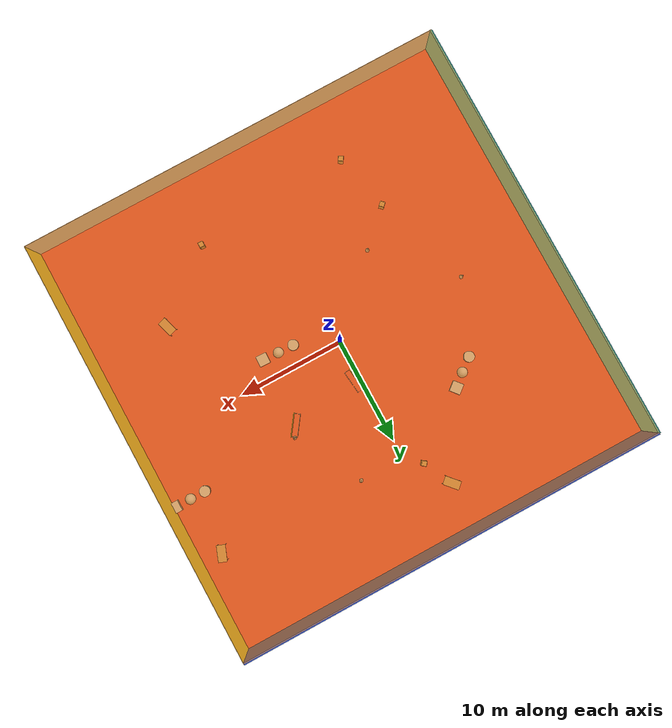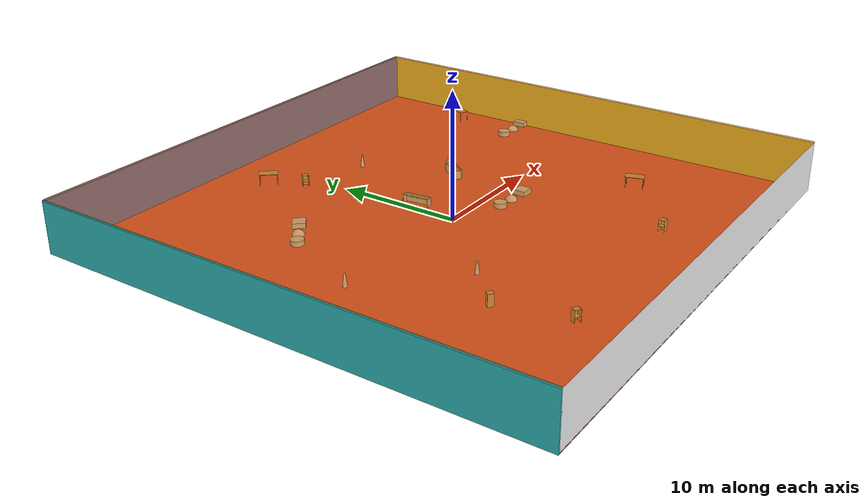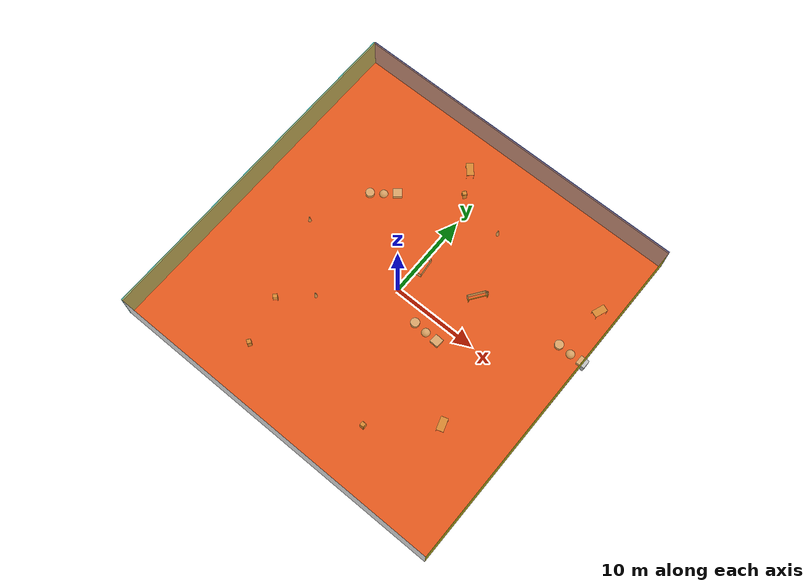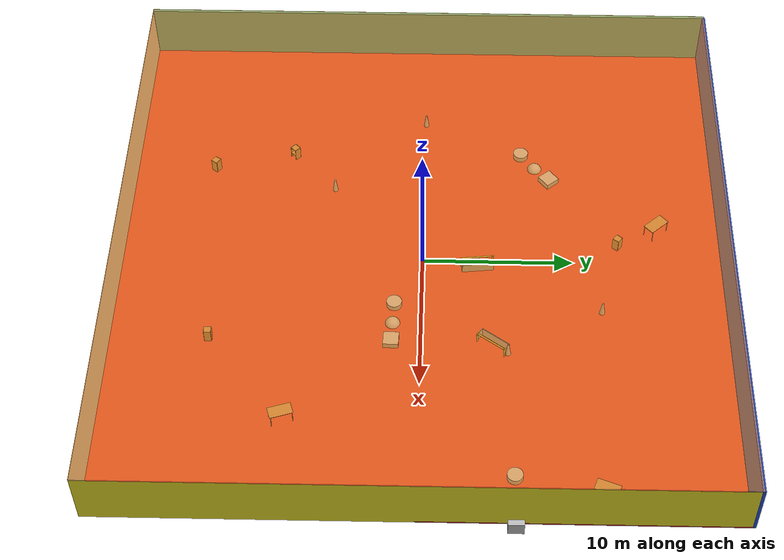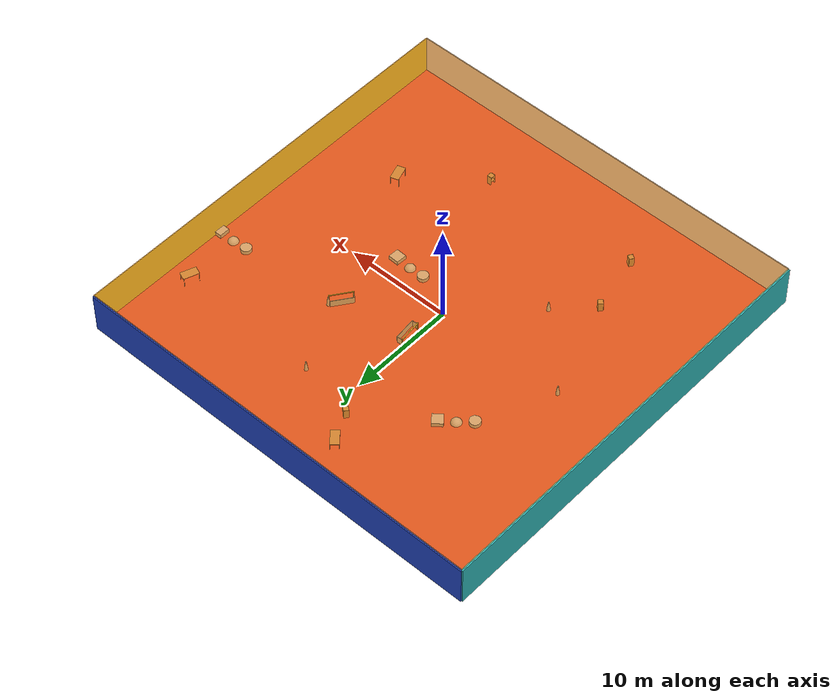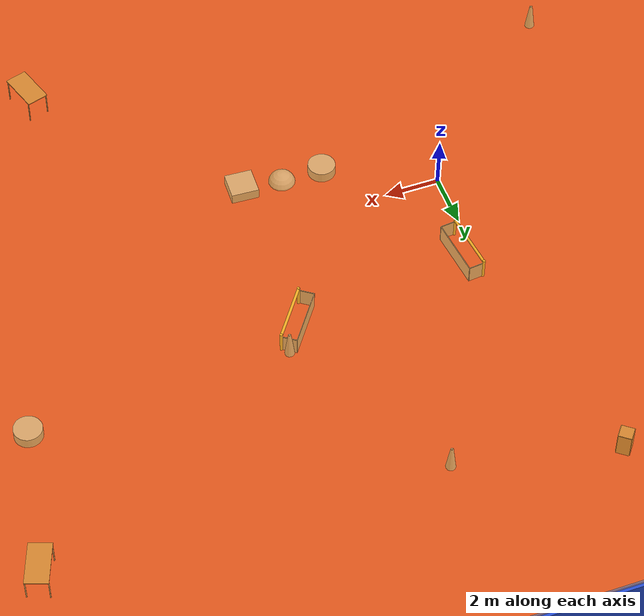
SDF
<sdf version="1.4">
 <world name="default">
  <physics type="ode">
   <max_step_size>0.001</max_step_size>
   <real_time_factor>1</real_time_factor>
   <real_time_update_rate>1000</real_time_update_rate>
   <gravity>0 0 -9.8</gravity>
  </physics>
  <scene><ambient>0.4 0.4 0.4 1</ambient><background>0.7 0.7 0.7 1</background><shadows>1</shadows></scene>
  <model name="Surrounding">
   <static>1</static>
   <link name="Ceiling">
    <collision name="Ceiling_Collision"><geometry><box><size>40 40 0.1</size></box></geometry></collision>
    <visual name="Ceiling_Visual">
     <geometry><box><size>40 40 0.1</size></box></geometry>
     <material>
      <script>
       <uri>file://media/materials/scripts/gazebo.material</uri>
       <name>Gazebo/OrangeTransparent</name>
      </script>
     </material>
    </visual>
    <pose>0 0 4.05 0 0 0</pose>
   </link>
   <link name="Wall_South">
    <collision name="Wall_South_Collision">
     <geometry><box><size>40 0 4</size></box></geometry>
     <pose>0 0 2 0 -0 0</pose>
    </collision>
    <visual name="Wall_South_Visual">
     <pose>0 0 2 0 -0 0</pose>
     <geometry><box><size>40 0 4</size></box></geometry>
     <material>
      <script><uri>file://media/materials/scripts/gazebo.material</uri><name>Gazebo/WhiteGlow</name></script>
     </material>
    </visual>
    <velocity_decay><linear>0</linear><angular>0</angular></velocity_decay>
    <pose>0 -20 0 0 -0 0</pose>
   </link>
   <link name="Wall_East">
    <collision name="Wall_21_Collision">
     <geometry><box><size>40 0 4</size></box></geometry>
     <pose>0 0 2 0 -0 0</pose>
    </collision>
    <visual name="Wall_21_Visual">
     <pose>0 0 2 0 -0 0</pose>
     <geometry><box><size>40 0 4</size></box></geometry>
     <material>
      <script><uri>file://media/materials/scripts/gazebo.material</uri><name>Gazebo/YellowGlow</name></script>
     </material>
    </visual>
    <velocity_decay><linear>0</linear><angular>0</angular></velocity_decay>
    <pose>20 0 0 0 -0 1.5708</pose>
   </link>
   <link name="Wall_North">
    <collision name="Wall_22_Collision">
     <geometry><box><size>40 0.2 4</size></box></geometry>
     <pose>0 0 2 0 -0 0</pose>
    </collision>
    <visual name="Wall_22_Visual">
     <pose>0 0 2 0 -0 0</pose>
     <geometry><box><size>40 0.2 4</size></box></geometry>
     <material>
      <script><uri>file://media/materials/scripts/gazebo.material</uri><name>Gazebo/BlueGlow</name></script>
     </material>
    </visual>
    <velocity_decay><linear>0</linear><angular>0</angular></velocity_decay>
    <pose>0 20 0 0 -0 0</pose>
   </link>
   <link name="Wall_West">
    <collision name="Wall_23_Collision">
     <geometry><box><size>40 0.2 4</size></box></geometry>
     <pose>0 0 2 0 -0 0</pose>
    </collision>
    <visual name="Wall_23_Visual">
     <pose>0 0 2 0 -0 0</pose>
     <geometry><box><size>40 0.2 4</size></box></geometry>
     <material>
      <script><uri>file://media/materials/scripts/gazebo.material</uri><name>Gazebo/TurquoiseGlow</name></script>
     </material>
    </visual>
    <velocity_decay><linear>0</linear><angular>0</angular></velocity_decay>
    <pose>-20 0 0 0 0 -1.5708</pose>
   </link>
   <link name="Ground_link">
    <collision name="collision">
     <pose>0 0 .05 0 -0 0</pose>
     <geometry><box><size>40 40 0.1</size></box></geometry>
    </collision>
    <visual name="visual">
     <pose>0 0 .05 0 -0 0</pose>
     <geometry><box><size>40 40 0.1</size></box></geometry>
     <material>
      <script><uri>file://media/materials/scripts/gazebo.material</uri><name>Gazebo/RedGlow</name></script>
     </material>
    </visual>
   </link>
   <static>1</static>
  </model>
  <spherical_coordinates>
   <surface_model>EARTH_WGS84</surface_model>
   <latitude_deg>0</latitude_deg>
   <longitude_deg>0</longitude_deg>
   <elevation>0</elevation>
   <heading_deg>0</heading_deg>
  </spherical_coordinates>
  <light name="lightball_0" type="diffuse">
   <diffuse>0.8 0.8 0.8 1</diffuse>
   <specular>0.2 0.2 0.2 1</specular>
   <attenuation>
    <range>100</range>
    <constant>0.7</constant>
    <linear>0.01</linear>
    <quadratic>0.001</quadratic>
   </attenuation>
   <direction>-0.5 0.1 -0.9</direction>
   <pose>-10.7279840948 17.1118379076 3.83331230955 0 0 0</pose>
  </light>
  <light name="lightball_1" type="diffuse">
   <diffuse>0.8 0.8 0.8 1</diffuse>
   <specular>0.2 0.2 0.2 1</specular>
   <attenuation>
    <range>100</range>
    <constant>0.7</constant>
    <linear>0.01</linear>
    <quadratic>0.001</quadratic>
   </attenuation>
   <direction>-0.5 0.1 -0.9</direction>
   <pose>3.35534705505 -5.0450178988 1.34358002676 0 0 0</pose>
  </light>
  <light name="lightball_2" type="diffuse">
   <diffuse>0.8 0.8 0.8 1</diffuse>
   <specular>0.2 0.2 0.2 1</specular>
   <attenuation>
    <range>100</range>
    <constant>0.7</constant>
    <linear>0.01</linear>
    <quadratic>0.001</quadratic>
   </attenuation>
   <direction>-0.5 0.1 -0.9</direction>
   <pose>-8.19239265757 -10.4688913247 2.97021941898 0 0 0</pose>
  </light>
  <light name="lightball_3" type="diffuse">
   <diffuse>0.8 0.8 0.8 1</diffuse>
   <specular>0.2 0.2 0.2 1</specular>
   <attenuation>
    <range>100</range>
    <constant>0.7</constant>
    <linear>0.01</linear>
    <quadratic>0.001</quadratic>
   </attenuation>
   <direction>-0.5 0.1 -0.9</direction>
   <pose>-17.3792629772 17.1680418655 0.96654072805 0 0 0</pose>
  </light>
  <light name="lightball_4" type="diffuse">
   <diffuse>0.8 0.8 0.8 1</diffuse>
   <specular>0.2 0.2 0.2 1</specular>
   <attenuation>
    <range>100</range>
    <constant>0.7</constant>
    <linear>0.01</linear>
    <quadratic>0.001</quadratic>
   </attenuation>
   <direction>-0.5 0.1 -0.9</direction>
   <pose>-0.587451969944 -10.1902761546 1.70998522963 0 0 0</pose>
  </light>
  <light name="lightball_5" type="diffuse">
   <diffuse>0.8 0.8 0.8 1</diffuse>
   <specular>0.2 0.2 0.2 1</specular>
   <attenuation>
    <range>100</range>
    <constant>0.7</constant>
    <linear>0.01</linear>
    <quadratic>0.001</quadratic>
   </attenuation>
   <direction>-0.5 0.1 -0.9</direction>
   <pose>1.13249162333 -9.19692667315 2.23045640878 0 0 0</pose>
  </light>
  <light name="lightball_6" type="diffuse">
   <diffuse>0.8 0.8 0.8 1</diffuse>
   <specular>0.2 0.2 0.2 1</specular>
   <attenuation>
    <range>100</range>
    <constant>0.7</constant>
    <linear>0.01</linear>
    <quadratic>0.001</quadratic>
   </attenuation>
   <direction>-0.5 0.1 -0.9</direction>
   <pose>7.52334128956 5.65038390771 0.666362788558 0 0 0</pose>
  </light>
  <light name="lightball_7" type="diffuse">
   <diffuse>0.8 0.8 0.8 1</diffuse>
   <specular>0.2 0.2 0.2 1</specular>
   <attenuation>
    <range>100</range>
    <constant>0.7</constant>
    <linear>0.01</linear>
    <quadratic>0.001</quadratic>
   </attenuation>
   <direction>-0.5 0.1 -0.9</direction>
   <pose>16.7004534999 11.557037036 2.14394577759 0 0 0</pose>
  </light>
  <light name="lightball_8" type="diffuse">
   <diffuse>0.8 0.8 0.8 1</diffuse>
   <specular>0.2 0.2 0.2 1</specular>
   <attenuation>
    <range>100</range>
    <constant>0.7</constant>
    <linear>0.01</linear>
    <quadratic>0.001</quadratic>
   </attenuation>
   <direction>-0.5 0.1 -0.9</direction>
   <pose>2.47321849644 -0.382609116127 3.87455380756 0 0 0</pose>
  </light>
  <light name="lightball_9" type="diffuse">
   <diffuse>0.8 0.8 0.8 1</diffuse>
   <specular>0.2 0.2 0.2 1</specular>
   <attenuation>
    <range>100</range>
    <constant>0.7</constant>
    <linear>0.01</linear>
    <quadratic>0.001</quadratic>
   </attenuation>
   <direction>-0.5 0.1 -0.9</direction>
   <pose>7.49203013958 -3.53222679526 3.64281454923 0 0 0</pose>
  </light>
  <light name="lightball_10" type="diffuse">
   <diffuse>0.8 0.8 0.8 1</diffuse>
   <specular>0.2 0.2 0.2 1</specular>
   <attenuation>
    <range>100</range>
    <constant>0.7</constant>
    <linear>0.01</linear>
    <quadratic>0.001</quadratic>
   </attenuation>
   <direction>-0.5 0.1 -0.9</direction>
   <pose>15.2537680403 -19.5426441244 0.514947528511 0 0 0</pose>
  </light>
  <light name="lightball_11" type="diffuse">
   <diffuse>0.8 0.8 0.8 1</diffuse>
   <specular>0.2 0.2 0.2 1</specular>
   <attenuation>
    <range>100</range>
    <constant>0.7</constant>
    <linear>0.01</linear>
    <quadratic>0.001</quadratic>
   </attenuation>
   <direction>-0.5 0.1 -0.9</direction>
   <pose>15.0873107634 15.8723431249 0.752538749737 0 0 0</pose>
  </light>
  <light name="lightball_12" type="diffuse">
   <diffuse>0.8 0.8 0.8 1</diffuse>
   <specular>0.2 0.2 0.2 1</specular>
   <attenuation>
    <range>100</range>
    <constant>0.7</constant>
    <linear>0.01</linear>
    <quadratic>0.001</quadratic>
   </attenuation>
   <direction>-0.5 0.1 -0.9</direction>
   <pose>-10.1058694538 -5.62010835943 3.61650600124 0 0 0</pose>
  </light>
  <include>
   <uri>model://construction_cone</uri>
   <pose>-12.4864191875 0.0509456985593 0 0 0 0.413116198196</pose>
  </include>
  <include><uri>model://cabinet</uri><pose>-8.01102892594 -14.5217792051 0 0 0 0.99715383618</pose></include>
  <include><uri>model://cabinet</uri><pose>-9.27413565466 -9.07574262727 0 0 0 2.36131253527</pose></include>
  <include>
   <uri>model://textured_shapes</uri>
   <pose>-8.38218603075 7.65514404815 0 0 0 2.25108030659</pose>
  </include>
  <include>
   <uri>model://construction_cone</uri>
   <pose>-6.19581092213 -6.12908300342 0 0 0 0.816391929198</pose>
  </include>
  <include><uri>model://cabinet</uri><pose>-1.38099672029 13.029977352 0 0 0 0.905992900879</pose></include>
  <include><uri>model://table</uri><pose>-2.71116943023 15.6939075955 0 0 0 2.29727327424</pose></include>
  <include>
   <uri>model://robocup_3Dsim_goal</uri>
   <pose>0.294906978289 3.63748076103 0 0 0 0.108794446169</pose>
  </include>
  <include>
   <uri>model://construction_cone</uri>
   <pose>4.23821419139 11.7759125557 0 0 0 1.06994911796</pose>
  </include>
  <include><uri>model://cabinet</uri><pose>6.74214248981 -13.6350421135 0 0 0 0.0116989631782</pose></include>
  <include>
   <uri>model://textured_shapes</uri>
   <pose>5.31057671063 -1.82805321474 0 0 0 1.52931746453</pose>
  </include>
  <include>
   <uri>model://robocup_3Dsim_goal</uri>
   <pose>7.23367044425 4.50920731769 0 0 0 2.51919342187</pose>
  </include>
  <include>
   <uri>model://construction_cone</uri>
   <pose>7.6329733974 5.6109755012 0 0 0 2.62678787849</pose>
  </include>
  <include><uri>model://table</uri><pose>12.8766423751 -8.52065964285 0 0 0 1.88025856582</pose></include>
  <include>
   <uri>model://textured_shapes</uri>
   <pose>18.3683043161 5.93190158132 0 0 0 1.5752947557</pose>
  </include>
  <include><uri>model://table</uri><pose>17.9895944561 11.388067625 0 0 0 1.20942782592</pose></include>
 </world>
</sdf>

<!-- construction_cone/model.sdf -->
<sdf version="1.5">
  <model name="Construction Cone">
    <link name="link">
      <collision name="collision">
        <geometry>
          <mesh>
            <scale>10 10 10</scale>
            <uri>file://isr-testbed/construction_cone/meshes/construction_cone.dae</uri>
          </mesh>
        </geometry>
      </collision>
      <visual name="visual">
        <geometry>
          <mesh>
            <scale>10 10 10</scale>
            <uri>file://isr-testbed/construction_cone/meshes/construction_cone.dae</uri>
          </mesh>
        </geometry>
      </visual>
    </link>
  </model>
</sdf>

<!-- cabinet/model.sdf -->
<sdf version="1.5">
  <model name="cabinet">
    <static>true</static>
    <link name="cabinet_bottom_plate">
      <inertial>
        <pose>0 0 -1 0 0 0</pose>
        <inertia>
          <ixx>2.050000</ixx>
          <ixy>0</ixy>
          <ixz>0</ixz>
          <iyy>2.050000</iyy>
          <iyz>0</iyz>
          <izz>2.050000</izz>
        </inertia>
        <mass>25.000000</mass>
      </inertial>
      <collision name="cabinet_bottom_plate_geom">
        <pose>0 0 0.010000 0 0 0</pose>
        <geometry>
          <box>
            <size>0.450000 0.450000 0.020000</size>
          </box>
        </geometry>
      </collision>
      <visual name="cabinet_bottom_plate_geom_visual">
        <pose>0 0 0.010000 0 0 0</pose>
        <geometry>
          <box>
            <size>0.450000 0.450000 0.020000</size>
          </box>
        </geometry>
        <material>
          <script>
            <uri>model://media/materials/scripts/gazebo.material</uri>
            <name>Gazebo/Wood</name>
          </script>
        </material>
      </visual>
      <collision name="cabinet_bottom_plate_geom_cabinet_back_plate">
        <pose>0.235000 0 0.510000 0 0 0</pose>
        <geometry>
          <box>
            <size>0.020000 0.450000 1.020000</size>
          </box>
        </geometry>
      </collision>
      <visual name="cabinet_bottom_plate_geom_cabinet_back_plate_visual">
        <pose>0.235000 0 0.510000 0 0 0</pose>
        <geometry>
          <box>
            <size>0.020000 0.450000 1.020000</size>
          </box>
        </geometry>
        <material>
          <script>
            <uri>model://media/materials/scripts/gazebo.material</uri>
            <name>Gazebo/Wood</name>
          </script>
        </material>
      </visual>
      <collision name="cabinet_bottom_plate_geom_cabinet_left_plate">
        <pose>0 0.235000 0.510000 0 0 0</pose>
        <geometry>
          <box>
            <size>0.450000 0.020000 1.020000</size>
          </box>
        </geometry>
      </collision>
      <visual name="cabinet_bottom_plate_geom_cabinet_left_plate_visual">
        <pose>0 0.235000 0.510000 0 0 0</pose>
        <geometry>
          <box>
            <size>0.450000 0.020000 1.020000</size>
          </box>
        </geometry>
        <material>
          <script>
            <uri>model://media/materials/scripts/gazebo.material</uri>
            <name>Gazebo/Wood</name>
          </script>
        </material>
      </visual>
      <collision name="cabinet_bottom_plate_geom_cabinet_middle_plate">
        <pose>0 0 0.510000 0 0 0</pose>
        <geometry>
          <box>
            <size>0.450000 0.450000 0.020000</size>
          </box>
        </geometry>
      </collision>
      <visual name="cabinet_bottom_plate_geom_cabinet_middle_plate_visual">
        <pose>0 0 0.510000 0 0 0</pose>
        <geometry>
          <box>
            <size>0.450000 0.450000 0.020000</size>
          </box>
        </geometry>
        <material>
          <script>
            <uri>model://media/materials/scripts/gazebo.material</uri>
            <name>Gazebo/Wood</name>
          </script>
        </material>
      </visual>
      <collision name="cabinet_bottom_plate_geom_cabinet_right_plate">
        <pose>0 -0.235000 0.510000 0 0 0</pose>
        <geometry>
          <box>
            <size>0.450000 0.020000 1.020000</size>
          </box>
        </geometry>
      </collision>
      <visual name="cabinet_bottom_plate_geom_cabinet_right_plate_visual">
        <pose>0 -0.235000 0.510000 0 0 0</pose>
        <geometry>
          <box>
            <size>0.450000 0.020000 1.020000</size>
          </box>
        </geometry>
        <material>
          <script>
            <uri>model://media/materials/scripts/gazebo.material</uri>
            <name>Gazebo/Wood</name>
          </script>
        </material>
      </visual>
      <collision name="cabinet_bottom_plate_geom_cabinet_top_plate">
        <pose>0 0 1.010000 0 0 0</pose>
        <geometry>
          <box>
            <size>0.450000 0.450000 0.020000</size>
          </box>
        </geometry>
      </collision>
      <visual name="cabinet_bottom_plate_geom_cabinet_top_plate_visual">
        <pose>0 0 1.010000 0 0 0</pose>
        <geometry>
          <box>
            <size>0.450000 0.450000 0.020000</size>
          </box>
        </geometry>
        <material>
          <script>
            <uri>model://media/materials/scripts/gazebo.material</uri>
            <name>Gazebo/Wood</name>
          </script>
        </material>
      </visual>
    </link>
  </model>
</sdf>

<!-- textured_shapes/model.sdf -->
<sdf version="1.6">
  <model name="textured_shapes">
    <pose>0 0 0.5 0 0 0</pose>
    <link name="box">
      <pose>0 -1.5 0 0 0 0</pose>
      <collision name="collision">
        <geometry>
          <box>
            <size>1 1 1</size>
          </box>
        </geometry>
      </collision>
      <visual name="visual">
        <geometry>
          <box>
            <size>1 1 1</size>
          </box>
        </geometry>
        <material>
          <script>
            <uri>model://../model_source/models/textured_shapes/materials/scripts</uri>
            <uri>model://../model_source/models/textured_shapes/materials/textures</uri>
            <name>TexturedShape/Squares</name>
          </script>
        </material>
      </visual>
    </link>
    <link name="sphere">
      <collision name="collision">
        <geometry>
          <sphere>
            <radius>0.5</radius>
          </sphere>
        </geometry>
      </collision>
      <visual name="visual">
        <geometry>
          <sphere>
            <radius>0.5</radius>
          </sphere>
        </geometry>
        <material>
          <script>
            <uri>model://../model_source/models/textured_shapes/materials/scripts</uri>
            <uri>model://../model_source/models/textured_shapes/materials/textures</uri>
            <name>TexturedShape/Squares</name>
          </script>
        </material>
      </visual>
    </link>
    <link name="cylinder">
      <pose>0 1.5 0 0 0 0</pose>
      <collision name="collision">
        <geometry>
          <cylinder>
            <radius>0.5</radius>
            <length>1</length>
          </cylinder>
        </geometry>
      </collision>
      <visual name="visual">
        <geometry>
          <cylinder>
            <radius>0.5</radius>
            <length>1</length>
          </cylinder>
        </geometry>
        <material>
          <script>
            <uri>model://../model_source/models/textured_shapes/materials/scripts</uri>
            <uri>model://../model_source/models/textured_shapes/materials/textures</uri>
            <name>TexturedShape/Squares</name>
          </script>
        </material>
      </visual>
    </link>
  </model>
</sdf>

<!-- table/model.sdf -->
<sdf version="1.5">
  <model name="table">
    <static>true</static>
    <link name="link">
      <collision name="surface">
        <pose>0 0 1.0 0 0 0</pose>
        <geometry>
          <box>
            <size>1.5 0.8 0.03</size>
          </box>
        </geometry>
        <surface>
          <friction>
            <ode>
              <mu>0.6</mu>
              <mu2>0.6</mu2>
            </ode>
          </friction>
        </surface>
      </collision>
      <visual name="visual1">
        <pose>0 0 1.0 0 0 0</pose>
        <geometry>
          <box>
            <size>1.5 0.8 0.03</size>
          </box>
        </geometry>
        <material>
          <script>
            <uri>model://media/materials/scripts/gazebo.material</uri>
            <name>Gazebo/Wood</name>
          </script>
        </material>
      </visual>
      <collision name="front_left_leg">
        <pose>0.68 0.38 0.5 0 0 0</pose>
        <geometry>
          <cylinder>
            <radius>0.02</radius>
            <length>1.0</length>
          </cylinder>
        </geometry>
      </collision>
      <visual name="front_left_leg">
        <pose>0.68 0.38 0.5 0 0 0</pose>
        <geometry>
          <cylinder>
            <radius>0.02</radius>
            <length>1.0</length>
          </cylinder>
        </geometry>
        <material>
          <script>
            <uri>model://media/materials/scripts/gazebo.material</uri>
            <name>Gazebo/Grey</name>
          </script>
        </material>
      </visual>
      <collision name="front_right_leg">
        <pose>0.68 -0.38 0.5 0 0 0</pose>
        <geometry>
          <cylinder>
            <radius>0.02</radius>
            <length>1.0</length>
          </cylinder>
        </geometry>
      </collision>
      <visual name="front_right_leg">
        <pose>0.68 -0.38 0.5 0 0 0</pose>
        <geometry>
          <cylinder>
            <radius>0.02</radius>
            <length>1.0</length>
          </cylinder>
        </geometry>
        <material>
          <script>
            <uri>model://media/materials/scripts/gazebo.material</uri>
            <name>Gazebo/Grey</name>
          </script>
        </material>
      </visual>
      <collision name="back_right_leg">
        <pose>-0.68 -0.38 0.5 0 0 0</pose>
        <geometry>
          <cylinder>
            <radius>0.02</radius>
            <length>1.0</length>
          </cylinder>
        </geometry>
      </collision>
      <visual name="back_right_leg">
        <pose>-0.68 -0.38 0.5 0 0 0</pose>
        <geometry>
          <cylinder>
            <radius>0.02</radius>
            <length>1.0</length>
          </cylinder>
        </geometry>
        <material>
          <script>
            <uri>model://media/materials/scripts/gazebo.material</uri>
            <name>Gazebo/Grey</name>
          </script>
        </material>
      </visual>
      <collision name="back_left_leg">
        <pose>-0.68 0.38 0.5 0 0 0</pose>
        <geometry>
          <cylinder>
            <radius>0.02</radius>
            <length>1.0</length>
          </cylinder>
        </geometry>
      </collision>
      <visual name="back_left_leg">
        <pose>-0.68 0.38 0.5 0 0 0</pose>
        <geometry>
          <cylinder>
            <radius>0.02</radius>
            <length>1.0</length>
          </cylinder>
        </geometry>
        <material>
          <script>
            <uri>model://media/materials/scripts/gazebo.material</uri>
            <name>Gazebo/Grey</name>
          </script>
        </material>
      </visual>
    </link>
  </model>
</sdf>

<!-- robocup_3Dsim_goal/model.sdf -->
<sdf version="1.5">
  <model name="robocup_3d_goal">
    <static>true</static>
    <link name="left_post">
      <pose>0 1.05 0.45 0 0 0</pose>
      <collision name="collision">
        <geometry>
          <cylinder>
            <radius>0.05</radius>
            <length>0.9</length>
          </cylinder>
        </geometry>
      </collision>
      <visual name="visual">
        <geometry>
          <cylinder>
            <radius>0.05</radius>
            <length>0.9</length>
          </cylinder>
        </geometry>
        <material>
          <script>
            <uri>file://media/materials/scripts/gazebo.material</uri>
            <name>Gazebo/ZincYellow</name>
          </script>
        </material>
      </visual>
    </link>
    <link name="left_support_horiz_lower">
      <pose>0.30 1.05 0.01 0 0 0</pose>
      <collision name="collision">
        <geometry>
          <box>
            <size>0.50 0.02 0.02</size>
          </box>
        </geometry>
      </collision>
      <visual name="visual">
        <geometry>
          <box>
            <size>0.50 0.02 0.02</size>
          </box>
        </geometry>
        <material>
          <script>
            <uri>file://media/materials/scripts/gazebo.material</uri>
            <name>Gazebo/White</name>
          </script>
        </material>
      </visual>
    </link>
    <link name="left_support_horiz_upper">
      <pose>0.30 1.05 0.79 0 0 0</pose>
      <collision name="collision">
        <geometry>
          <box>
            <size>0.50 0.02 0.02</size>
          </box>
        </geometry>
      </collision>
      <visual name="visual">
        <geometry>
          <box>
            <size>0.50 0.02 0.02</size>
          </box>
        </geometry>
        <material>
          <script>
            <uri>file://media/materials/scripts/gazebo.material</uri>
            <name>Gazebo/White</name>
          </script>
        </material>
      </visual>
    </link>
    <link name="left_support_vertical">
      <pose>0.56 1.05 0.4 0 1.5708 0</pose>
      <collision name="collision">
        <geometry>
          <box>
            <size>0.80 0.02 0.02</size>
          </box>
        </geometry>
      </collision>
      <visual name="visual">
        <geometry>
          <box>
            <size>0.80 0.02 0.02</size>
          </box>
        </geometry>
        <material>
          <script>
            <uri>file://media/materials/scripts/gazebo.material</uri>
            <name>Gazebo/White</name>
          </script>
        </material>
      </visual>
    </link>
    <link name="right_support_horiz_lower">
      <pose>0.30 -1.05 0.01 0 0 0</pose>
      <collision name="collision">
        <geometry>
          <box>
            <size>0.50 0.02 0.02</size>
          </box>
        </geometry>
      </collision>
      <visual name="visual">
        <geometry>
          <box>
            <size>0.50 0.02 0.02</size>
          </box>
        </geometry>
        <material>
          <script>
            <uri>file://media/materials/scripts/gazebo.material</uri>
            <name>Gazebo/White</name>
          </script>
        </material>
      </visual>
    </link>
    <link name="right_support_horiz_upper">
      <pose>0.30 -1.05 0.79 0 0 0</pose>
      <collision name="collision">
        <geometry>
          <box>
            <size>0.50 0.02 0.02</size>
          </box>
        </geometry>
      </collision>
      <visual name="visual">
        <geometry>
          <box>
            <size>0.50 0.02 0.02</size>
          </box>
        </geometry>
        <material>
          <script>
            <uri>file://media/materials/scripts/gazebo.material</uri>
            <name>Gazebo/White</name>
          </script>
        </material>
      </visual>
    </link>
    <link name="right_support_vertical">
      <pose>0.56 -1.05 0.4 0 1.5708 0</pose>
      <collision name="collision">
        <geometry>
          <box>
            <size>0.80 0.02 0.02</size>
          </box>
        </geometry>
      </collision>
      <visual name="visual">
        <geometry>
          <box>
            <size>0.80 0.02 0.02</size>
          </box>
        </geometry>
        <material>
          <script>
            <uri>file://media/materials/scripts/gazebo.material</uri>
            <name>Gazebo/White</name>
          </script>
        </material>
      </visual>
    </link>
    <link name="center_support_horiz_lower">
      <pose>0.56 0 0.01 0 1.5708 0</pose>
      <collision name="collision">
        <geometry>
          <box>
            <size>0.02 2.08 0.02</size>
          </box>
        </geometry>
      </collision>
      <visual name="visual">
        <geometry>
          <box>
            <size>0.02 2.08 0.02</size>
          </box>
        </geometry>
        <material>
          <script>
            <uri>file://media/materials/scripts/gazebo.material</uri>
            <name>Gazebo/White</name>
          </script>
        </material>
      </visual>
    </link>
    <link name="center_support_horiz_upper">
      <pose>0.56 0 0.79 0 1.5708 0</pose>
      <collision name="collision">
        <geometry>
          <box>
            <size>0.02 2.08 0.02</size>
          </box>
        </geometry>
      </collision>
      <visual name="visual">
        <geometry>
          <box>
            <size>0.02 2.08 0.02</size>
          </box>
        </geometry>
        <material>
          <script>
            <uri>file://media/materials/scripts/gazebo.material</uri>
            <name>Gazebo/White</name>
          </script>
        </material>
      </visual>
    </link>
    <link name="right_post">
      <pose>0 -1.05 0.45 0 0 0</pose>
      <collision name="collision">
        <geometry>
          <cylinder>
            <radius>0.05</radius>
            <length>0.9</length>
          </cylinder>
        </geometry>
      </collision>
      <visual name="visual">
        <geometry>
          <cylinder>
            <radius>0.05</radius>
            <length>0.9</length>
          </cylinder>
        </geometry>
        <material>
          <script>
            <uri>file://media/materials/scripts/gazebo.material</uri>
            <name>Gazebo/ZincYellow</name>
          </script>
        </material>
      </visual>
    </link>
    <link name="crossbar">
      <pose>0 0 0.85 1.57 1.57 0</pose>
      <collision name="collision">
        <geometry>
          <cylinder>
            <radius>0.05</radius>
            <length>2.0</length>
          </cylinder>
        </geometry>
      </collision>
      <visual name="visual">
        <geometry>
          <cylinder>
            <radius>0.05</radius>
            <length>2.0</length>
          </cylinder>
        </geometry>
        <material>
          <script>
            <uri>file://media/materials/scripts/gazebo.material</uri>
            <name>Gazebo/ZincYellow</name>
          </script>
        </material>
      </visual>
    </link>
    <link name="center_net">
      <pose>0.56 0 0.40 0 0 0</pose>
      <collision name="collision">
        <geometry>
          <box>
            <size>0.01 2.1 0.80</size>
          </box>
        </geometry>
      </collision>
      <visual name="visual">
        <geometry>
          <box>
            <size>0.01 2.1 0.80</size>
          </box>
        </geometry>
        <material>
          <script>
            <uri>model://../model_source/models/robocup09_spl_field/materials/scripts/</uri>
            <uri>model://../model_source/models/robocup09_spl_field/materials/textures/</uri>
            <name>RoboCup/Net</name>
          </script>
        </material>
      </visual>
    </link>
    <link name="left_net">
      <pose>0.30 1.05 0.40 0 0 0</pose>
      <collision name="collision">
        <geometry>
          <box>
            <size>0.50 0.01 0.76</size>
          </box>
        </geometry>
      </collision>
      <visual name="visual">
        <geometry>
          <box>
            <size>0.50 0.01 0.76</size>
          </box>
        </geometry>
        <material>
          <script>
            <uri>model://../model_source/models/robocup09_spl_field/materials/scripts/</uri>
            <uri>model://../model_source/models/robocup09_spl_field/materials/textures/</uri>
            <name>RoboCup/Net</name>
          </script>
        </material>
      </visual>
    </link>
    <link name="right_net">
      <pose>0.30 -1.05 0.40 0 0 0</pose>
      <collision name="collision">
        <geometry>
          <box>
            <size>0.50 0.01 0.76</size>
          </box>
        </geometry>
      </collision>
      <visual name="visual">
        <geometry>
          <box>
            <size>0.50 0.01 0.76</size>
          </box>
        </geometry>
        <material>
          <script>
            <uri>model://../model_source/models/robocup09_spl_field/materials/scripts/</uri>
            <uri>model://../model_source/models/robocup09_spl_field/materials/textures/</uri>
            <name>RoboCup/Net</name>
          </script>
        </material>
      </visual>
    </link>
  </model>
</sdf>
